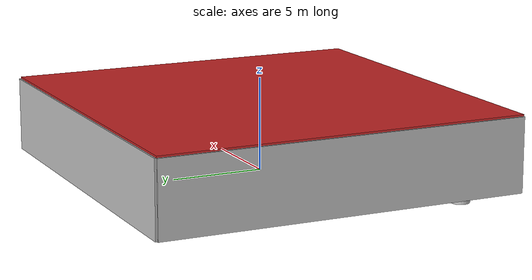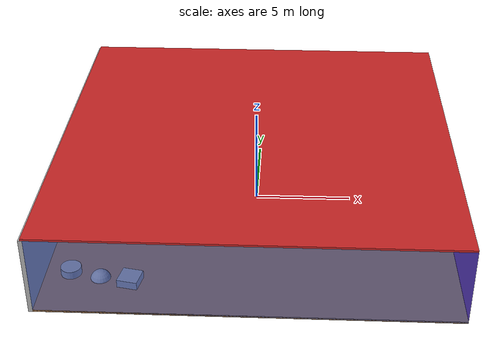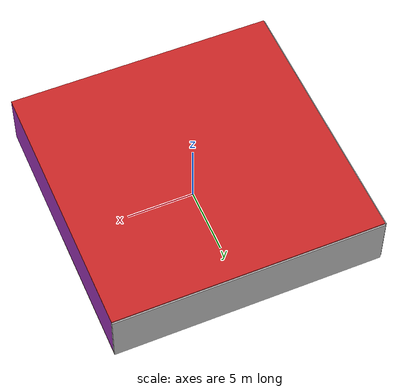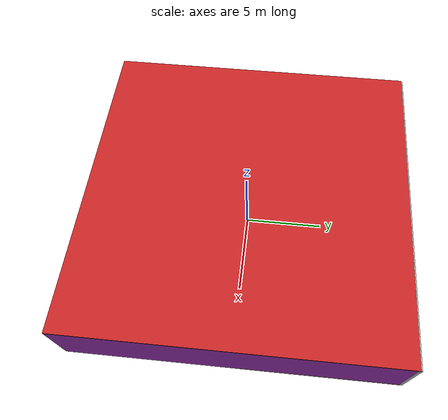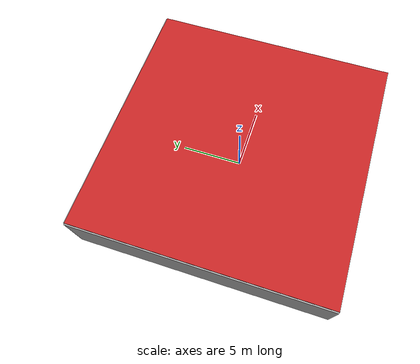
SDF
<sdf version="1.4">
 <world name="default">
  <physics type="ode">
   <max_step_size>0.001</max_step_size>
   <real_time_factor>1</real_time_factor>
   <real_time_update_rate>1000</real_time_update_rate>
   <gravity>0 0 -9.8</gravity>
  </physics>
  <scene><ambient>0.4 0.4 0.4 1</ambient><background>0.7 0.7 0.7 1</background><shadows>1</shadows></scene>
  <model name="Surrounding">
   <static>1</static>
   <link name="Ceiling">
    <collision name="Ceiling_Collision"><geometry><box><size>20 20 0.1</size></box></geometry></collision>
    <visual name="Ceiling_Visual">
     <geometry><box><size>20 20 0.1</size></box></geometry>
     <material>
      <script><uri>file://media/materials/scripts/gazebo.material</uri><name>Gazebo/RedGlow</name></script>
     </material>
    </visual>
    <pose>0 0 4.05 0 0 0</pose>
   </link>
   <link name="Wall_South">
    <collision name="Wall_South_Collision">
     <geometry><box><size>20 0 4</size></box></geometry>
     <pose>0 0 2 0 -0 0</pose>
    </collision>
    <visual name="Wall_South_Visual">
     <pose>0 0 2 0 -0 0</pose>
     <geometry><box><size>20 0 4</size></box></geometry>
     <material>
      <script><uri>file://media/materials/scripts/gazebo.material</uri><name>Gazebo/BlueTransparent</name></script>
     </material>
    </visual>
    <velocity_decay><linear>0</linear><angular>0</angular></velocity_decay>
    <pose>0 -10 0 0 -0 0</pose>
   </link>
   <link name="Wall_East">
    <collision name="Wall_21_Collision">
     <geometry><box><size>20 0 4</size></box></geometry>
     <pose>0 0 2 0 -0 0</pose>
    </collision>
    <visual name="Wall_21_Visual">
     <pose>0 0 2 0 -0 0</pose>
     <geometry><box><size>20 0 4</size></box></geometry>
     <material>
      <script><uri>file://media/materials/scripts/gazebo.material</uri><name>Gazebo/Purple</name></script>
     </material>
    </visual>
    <velocity_decay><linear>0</linear><angular>0</angular></velocity_decay>
    <pose>10 0 0 0 -0 1.5708</pose>
   </link>
   <link name="Wall_North">
    <collision name="Wall_22_Collision">
     <geometry><box><size>20 0.2 4</size></box></geometry>
     <pose>0 0 2 0 -0 0</pose>
    </collision>
    <visual name="Wall_22_Visual">
     <pose>0 0 2 0 -0 0</pose>
     <geometry><box><size>20 0.2 4</size></box></geometry>
     <material>
      <script><uri>file://media/materials/scripts/gazebo.material</uri><name>Gazebo/LightOn</name></script>
     </material>
    </visual>
    <velocity_decay><linear>0</linear><angular>0</angular></velocity_decay>
    <pose>0 10 0 0 -0 0</pose>
   </link>
   <link name="Wall_West">
    <collision name="Wall_23_Collision">
     <geometry><box><size>20 0.2 4</size></box></geometry>
     <pose>0 0 2 0 -0 0</pose>
    </collision>
    <visual name="Wall_23_Visual">
     <pose>0 0 2 0 -0 0</pose>
     <geometry><box><size>20 0.2 4</size></box></geometry>
     <material>
      <script><uri>file://media/materials/scripts/gazebo.material</uri><name>Gazebo/CloudySky</name></script>
     </material>
    </visual>
    <velocity_decay><linear>0</linear><angular>0</angular></velocity_decay>
    <pose>-10 0 0 0 0 -1.5708</pose>
   </link>
   <link name="Ground_link">
    <collision name="collision">
     <pose>0 0 .05 0 -0 0</pose>
     <geometry><box><size>20 20 0.1</size></box></geometry>
    </collision>
    <visual name="visual">
     <pose>0 0 .05 0 -0 0</pose>
     <geometry><box><size>20 20 0.1</size></box></geometry>
     <material>
      <script><uri>file://media/materials/scripts/gazebo.material</uri><name>Gazebo/WoodPallet</name></script>
     </material>
    </visual>
   </link>
   <static>1</static>
  </model>
  <spherical_coordinates>
   <surface_model>EARTH_WGS84</surface_model>
   <latitude_deg>0</latitude_deg>
   <longitude_deg>0</longitude_deg>
   <elevation>0</elevation>
   <heading_deg>0</heading_deg>
  </spherical_coordinates>
  <light name="lightball_0" type="diffuse">
   <diffuse>0.8 0.8 0.8 1</diffuse>
   <specular>0.2 0.2 0.2 1</specular>
   <attenuation>
    <range>100</range>
    <constant>0.7</constant>
    <linear>0.01</linear>
    <quadratic>0.001</quadratic>
   </attenuation>
   <direction>-0.5 0.1 -0.9</direction>
   <pose>-5.70010785929 -0.132007853303 1.96260334767 0 0 0</pose>
  </light>
  <light name="lightball_1" type="diffuse">
   <diffuse>0.8 0.8 0.8 1</diffuse>
   <specular>0.2 0.2 0.2 1</specular>
   <attenuation>
    <range>100</range>
    <constant>0.7</constant>
    <linear>0.01</linear>
    <quadratic>0.001</quadratic>
   </attenuation>
   <direction>-0.5 0.1 -0.9</direction>
   <pose>4.45637010826 4.4761095028 0.994565425115 0 0 0</pose>
  </light>
  <light name="lightball_2" type="diffuse">
   <diffuse>0.8 0.8 0.8 1</diffuse>
   <specular>0.2 0.2 0.2 1</specular>
   <attenuation>
    <range>100</range>
    <constant>0.7</constant>
    <linear>0.01</linear>
    <quadratic>0.001</quadratic>
   </attenuation>
   <direction>-0.5 0.1 -0.9</direction>
   <pose>3.97285546968 -6.12831614708 3.59546658689 0 0 0</pose>
  </light>
  <light name="lightball_3" type="diffuse">
   <diffuse>0.8 0.8 0.8 1</diffuse>
   <specular>0.2 0.2 0.2 1</specular>
   <attenuation>
    <range>100</range>
    <constant>0.7</constant>
    <linear>0.01</linear>
    <quadratic>0.001</quadratic>
   </attenuation>
   <direction>-0.5 0.1 -0.9</direction>
   <pose>7.53168992815 0.296395706888 3.0407789433 0 0 0</pose>
  </light>
  <include>
   <uri>model://textured_shapes</uri>
   <pose>-7.18796030538 -7.49914793572 0 0 0 1.3748318923</pose>
  </include>
  <include>
   <uri>model://textured_shapes</uri>
   <pose>-5.25400598135 -0.829237392539 0 0 0 2.30450790279</pose>
  </include>
  <include>
   <uri>model://construction_cone</uri>
   <pose>7.53198157269 7.21715597377 0 0 0 1.88098545141</pose>
  </include>
 </world>
</sdf>

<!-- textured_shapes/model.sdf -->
<sdf version="1.6">
  <model name="textured_shapes">
    <pose>0 0 0.5 0 0 0</pose>
    <link name="box">
      <pose>0 -1.5 0 0 0 0</pose>
      <collision name="collision">
        <geometry>
          <box>
            <size>1 1 1</size>
          </box>
        </geometry>
      </collision>
      <visual name="visual">
        <geometry>
          <box>
            <size>1 1 1</size>
          </box>
        </geometry>
        <material>
          <script>
            <uri>model://../model_source/models/textured_shapes/materials/scripts</uri>
            <uri>model://../model_source/models/textured_shapes/materials/textures</uri>
            <name>TexturedShape/Squares</name>
          </script>
        </material>
      </visual>
    </link>
    <link name="sphere">
      <collision name="collision">
        <geometry>
          <sphere>
            <radius>0.5</radius>
          </sphere>
        </geometry>
      </collision>
      <visual name="visual">
        <geometry>
          <sphere>
            <radius>0.5</radius>
          </sphere>
        </geometry>
        <material>
          <script>
            <uri>model://../model_source/models/textured_shapes/materials/scripts</uri>
            <uri>model://../model_source/models/textured_shapes/materials/textures</uri>
            <name>TexturedShape/Squares</name>
          </script>
        </material>
      </visual>
    </link>
    <link name="cylinder">
      <pose>0 1.5 0 0 0 0</pose>
      <collision name="collision">
        <geometry>
          <cylinder>
            <radius>0.5</radius>
            <length>1</length>
          </cylinder>
        </geometry>
      </collision>
      <visual name="visual">
        <geometry>
          <cylinder>
            <radius>0.5</radius>
            <length>1</length>
          </cylinder>
        </geometry>
        <material>
          <script>
            <uri>model://../model_source/models/textured_shapes/materials/scripts</uri>
            <uri>model://../model_source/models/textured_shapes/materials/textures</uri>
            <name>TexturedShape/Squares</name>
          </script>
        </material>
      </visual>
    </link>
  </model>
</sdf>

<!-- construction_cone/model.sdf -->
<sdf version="1.5">
  <model name="Construction Cone">
    <link name="link">
      <collision name="collision">
        <geometry>
          <mesh>
            <scale>10 10 10</scale>
            <uri>file://isr-testbed/construction_cone/meshes/construction_cone.dae</uri>
          </mesh>
        </geometry>
      </collision>
      <visual name="visual">
        <geometry>
          <mesh>
            <scale>10 10 10</scale>
            <uri>file://isr-testbed/construction_cone/meshes/construction_cone.dae</uri>
          </mesh>
        </geometry>
      </visual>
    </link>
  </model>
</sdf>
